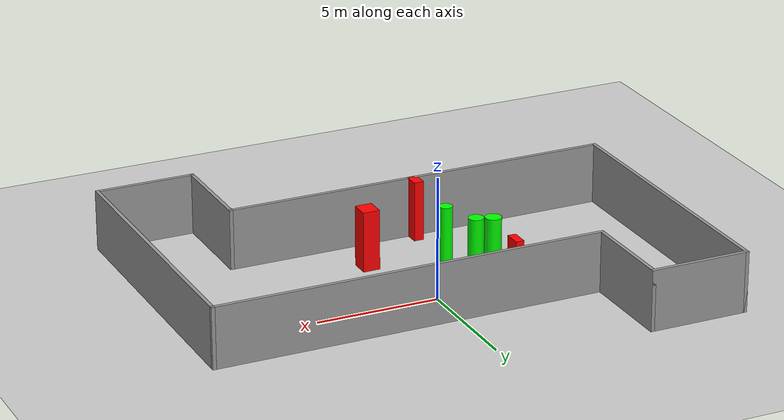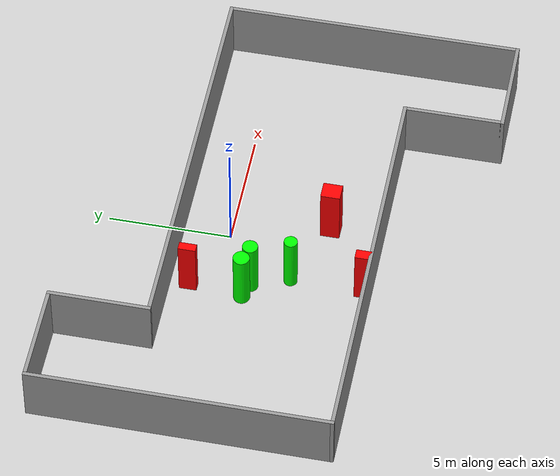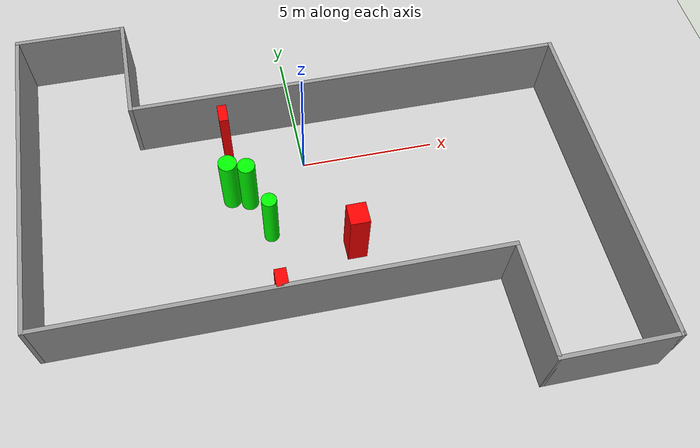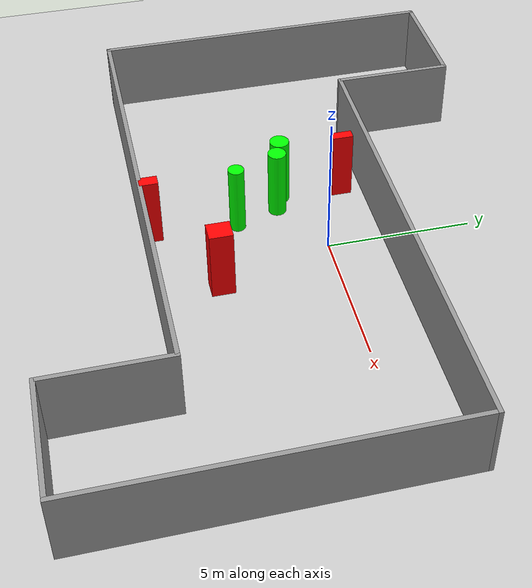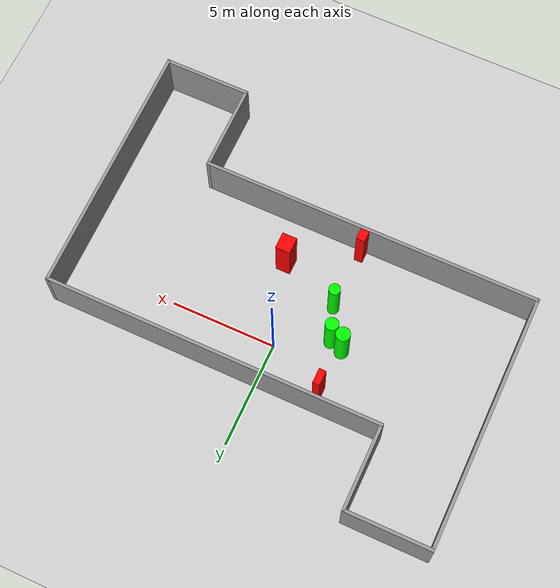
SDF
<sdf version="1.7">
 <world name="default">
  <light name="sun" type="directional">
   <pose>0 0 10 0 -0 0</pose>
   <diffuse>0.8 0.8 0.8 1</diffuse>
   <specular>0.2 0.2 0.2 1</specular>
   <attenuation>
    <range>1000</range>
    <constant>0.9</constant>
    <linear>0.01</linear>
    <quadratic>0.001</quadratic>
   </attenuation>
   <direction>-0.5 0.1 -0.9</direction>
   <spot><inner_angle>0</inner_angle><outer_angle>0</outer_angle><falloff>0</falloff></spot>
  </light>
  <model name="ground_plane">
   <static>1</static>
   <link name="link">
    <collision name="collision">
     <geometry><plane><normal>0 0 1</normal><size>100 100</size></plane></geometry>
     <surface>
      <contact><collide_bitmask>65535</collide_bitmask></contact>
      <friction><ode><mu>100</mu><mu2>50</mu2></ode></friction>
     </surface>
    </collision>
    <visual name="visual">
     <cast_shadows>0</cast_shadows>
     <geometry><plane><normal>0 0 1</normal><size>100 100</size></plane></geometry>
     <material>
      <script><uri>file://media/materials/scripts/gazebo.material</uri><name>Gazebo/Grey</name></script>
     </material>
    </visual>
   </link>
  </model>
  <gravity>0 0 -9.8</gravity>
  <magnetic_field>6e-06 2.3e-05 -4.2e-05</magnetic_field>
  <atmosphere type="adiabatic"/>
  <physics type="ode">
   <max_step_size>0.001</max_step_size>
   <real_time_factor>1</real_time_factor>
   <real_time_update_rate>1000</real_time_update_rate>
  </physics>
  <scene><ambient>0.4 0.4 0.4 1</ambient><background>0.7 0.7 0.7 1</background><shadows>1</shadows></scene>
  <spherical_coordinates>
   <surface_model>EARTH_WGS84</surface_model>
   <latitude_deg>0</latitude_deg>
   <longitude_deg>0</longitude_deg>
   <elevation>0</elevation>
   <heading_deg>0</heading_deg>
  </spherical_coordinates>
  <model name="my_base_walls">
   <link name="Wall_13">
    <collision name="Wall_13_Collision">
     <geometry><box><size>12.15 0.15 2.5</size></box></geometry>
     <pose>0 0 1.25 0 -0 0</pose>
    </collision>
    <visual name="Wall_13_Visual">
     <pose>0 0 1.25 0 -0 0</pose>
     <geometry><box><size>12.15 0.15 2.5</size></box></geometry>
     <material>
      <script><uri>file://media/materials/scripts/gazebo.material</uri><name>Gazebo/Grey</name></script>
      <ambient>1 1 1 1</ambient>
     </material>
     <meta><layer>0</layer></meta>
    </visual>
    <pose>10 -2 0 0 -0 1.5708</pose>
   </link>
   <link name="Wall_15">
    <collision name="Wall_15_Collision">
     <geometry><box><size>16.15 0.15 2.5</size></box></geometry>
     <pose>0 0 1.25 0 -0 0</pose>
    </collision>
    <visual name="Wall_15_Visual">
     <pose>0 0 1.25 0 -0 0</pose>
     <geometry><box><size>16.15 0.15 2.5</size></box></geometry>
     <material>
      <script><uri>file://media/materials/scripts/gazebo.material</uri><name>Gazebo/Grey</name></script>
      <ambient>1 1 1 1</ambient>
     </material>
     <meta><layer>0</layer></meta>
    </visual>
    <pose>2 4 0 0 -0 3.14159</pose>
   </link>
   <link name="Wall_17">
    <collision name="Wall_17_Collision">
     <geometry><box><size>4.15 0.15 2.5</size></box></geometry>
     <pose>0 0 1.25 0 -0 0</pose>
    </collision>
    <visual name="Wall_17_Visual">
     <pose>0 0 1.25 0 -0 0</pose>
     <geometry><box><size>4.15 0.15 2.5</size></box></geometry>
     <material>
      <script><uri>file://media/materials/scripts/gazebo.material</uri><name>Gazebo/Grey</name></script>
      <ambient>1 1 1 1</ambient>
     </material>
     <meta><layer>0</layer></meta>
    </visual>
    <pose>6 -6 0 0 -0 -1.5708</pose>
   </link>
   <link name="Wall_19">
    <collision name="Wall_19_Collision">
     <geometry><box><size>12.15 0.15 2.5</size></box></geometry>
     <pose>0 0 1.25 0 -0 0</pose>
    </collision>
    <visual name="Wall_19_Visual">
     <pose>0 0 1.25 0 -0 0</pose>
     <geometry><box><size>12.15 0.15 2.5</size></box></geometry>
     <material>
      <script><uri>file://media/materials/scripts/gazebo.material</uri><name>Gazebo/Grey</name></script>
      <ambient>1 1 1 1</ambient>
     </material>
     <meta><layer>0</layer></meta>
    </visual>
    <pose>-10 2 0 0 -0 1.5708</pose>
   </link>
   <link name="Wall_21">
    <collision name="Wall_21_Collision">
     <geometry><box><size>4.15 0.15 2.5</size></box></geometry>
     <pose>0 0 1.25 0 -0 0</pose>
    </collision>
    <visual name="Wall_21_Visual">
     <pose>0 0 1.25 0 -0 0</pose>
     <geometry><box><size>4.15 0.15 2.5</size></box></geometry>
     <material>
      <script><uri>file://media/materials/scripts/gazebo.material</uri><name>Gazebo/Grey</name></script>
      <ambient>1 1 1 1</ambient>
     </material>
     <meta><layer>0</layer></meta>
    </visual>
    <pose>-8 8 0 0 -0 0</pose>
   </link>
   <link name="Wall_23">
    <collision name="Wall_23_Collision">
     <geometry><box><size>4.15 0.15 2.5</size></box></geometry>
     <pose>0 0 1.25 0 -0 0</pose>
    </collision>
    <visual name="Wall_23_Visual">
     <pose>0 0 1.25 0 -0 0</pose>
     <geometry><box><size>4.15 0.15 2.5</size></box></geometry>
     <material>
      <script><uri>file://media/materials/scripts/gazebo.material</uri><name>Gazebo/Grey</name></script>
      <ambient>1 1 1 1</ambient>
     </material>
     <meta><layer>0</layer></meta>
    </visual>
    <pose>-6 6 0 0 -0 -1.5708</pose>
   </link>
   <link name="Wall_25">
    <collision name="Wall_25_Collision">
     <geometry><box><size>4.15 0.15 2.5</size></box></geometry>
     <pose>0 0 1.25 0 -0 0</pose>
    </collision>
    <visual name="Wall_25_Visual">
     <pose>0 0 1.25 0 -0 0</pose>
     <geometry><box><size>4.15 0.15 2.5</size></box></geometry>
     <material>
      <script><uri>file://media/materials/scripts/gazebo.material</uri><name>Gazebo/Grey</name></script>
      <ambient>1 1 1 1</ambient>
     </material>
     <meta><layer>0</layer></meta>
    </visual>
    <pose>8 -8 0 0 -0 0</pose>
   </link>
   <link name="Wall_9">
    <collision name="Wall_9_Collision">
     <geometry><box><size>16.15 0.15 2.5</size></box></geometry>
     <pose>0 0 1.25 0 -0 0</pose>
    </collision>
    <visual name="Wall_9_Visual">
     <pose>0 0 1.25 0 -0 0</pose>
     <geometry><box><size>16.15 0.15 2.5</size></box></geometry>
     <material>
      <script><uri>file://media/materials/scripts/gazebo.material</uri><name>Gazebo/Grey</name></script>
      <ambient>1 1 1 1</ambient>
     </material>
     <meta><layer>0</layer></meta>
    </visual>
    <pose>-2 -4 0 0 -0 3.14159</pose>
   </link>
   <static>1</static>
   <pose>-0 -2 0 0 -0 0</pose>
  </model>
  <model name="cylinder1">
   <static>1</static>
   <link name="link">
    <inertial>
     <mass>1</mass>
     <inertia><ixx>0.5</ixx><ixy>0</ixy><ixz>0</ixz><iyy>0.5</iyy><iyz>0</iyz><izz>1</izz></inertia>
    </inertial>
    <collision name="collision">
     <geometry><cylinder><radius>0.33367999744966004</radius><length>2.5</length></cylinder></geometry>
    </collision>
    <visual name="visual">
     <geometry><cylinder><radius>0.33367999744966004</radius><length>2.5</length></cylinder></geometry>
     <material>
      <ambient>0 1 0 1</ambient>
      <diffuse>0 1 0 1</diffuse>
      <specular>0.1 0.1 0.1 1</specular>
      <emissive>0 0 0 0</emissive>
     </material>
    </visual>
   </link>
   <pose>-2.884076223109184 -1.0232931165001444 1.25 0 0 0</pose>
  </model>
  <model name="cylinder2">
   <static>1</static>
   <link name="link">
    <inertial>
     <mass>1</mass>
     <inertia><ixx>0.5</ixx><ixy>0</ixy><ixz>0</ixz><iyy>0.5</iyy><iyz>0</iyz><izz>1</izz></inertia>
    </inertial>
    <collision name="collision">
     <geometry><cylinder><radius>0.3121459303582177</radius><length>2.5</length></cylinder></geometry>
    </collision>
    <visual name="visual">
     <geometry><cylinder><radius>0.3121459303582177</radius><length>2.5</length></cylinder></geometry>
     <material>
      <ambient>0 1 0 1</ambient>
      <diffuse>0 1 0 1</diffuse>
      <specular>0.1 0.1 0.1 1</specular>
      <emissive>0 0 0 0</emissive>
     </material>
    </visual>
   </link>
   <pose>-2.2562977174560794 -1.2520191745869367 1.25 0 0 0</pose>
  </model>
  <model name="cylinder3">
   <static>1</static>
   <link name="link">
    <inertial>
     <mass>1</mass>
     <inertia><ixx>0.5</ixx><ixy>0</ixy><ixz>0</ixz><iyy>0.5</iyy><iyz>0</iyz><izz>1</izz></inertia>
    </inertial>
    <collision name="collision">
     <geometry><cylinder><radius>0.27200857835469777</radius><length>2.5</length></cylinder></geometry>
    </collision>
    <visual name="visual">
     <geometry><cylinder><radius>0.27200857835469777</radius><length>2.5</length></cylinder></geometry>
     <material>
      <ambient>0 1 0 1</ambient>
      <diffuse>0 1 0 1</diffuse>
      <specular>0.1 0.1 0.1 1</specular>
      <emissive>0 0 0 0</emissive>
     </material>
    </visual>
   </link>
   <pose>-1.7071889714727737 -2.774844974638752 1.25 0 0 0</pose>
  </model>
  <model name="box1">
   <static>1</static>
   <link name="link">
    <inertial>
     <mass>1</mass>
     <inertia><ixx>0.083</ixx><ixy>0</ixy><ixz>0</ixz><iyy>0.083</iyy><iyz>0</iyz><izz>0.083</izz></inertia>
    </inertial>
    <collision name="collision">
     <geometry><box><size>0.6937878466903546 0.7842602212985473 2.5</size></box></geometry>
    </collision>
    <visual name="visual">
     <geometry><box><size>0.6937878466903546 0.7842602212985473 2.5</size></box></geometry>
     <material>
      <ambient>1 0 0 1</ambient>
      <diffuse>1 0 0 1</diffuse>
      <specular>0.1 0.1 0.1 1</specular>
      <emissive>0 0 0 0</emissive>
     </material>
    </visual>
    <sensor name="my_contact" type="contact">
     <contact><collision>box_collision</collision><topic>__default_topic__</topic></contact>
    </sensor>
   </link>
   <pose>1.1421993341243173 -3.8857078556464053 1.25 0 0 0</pose>
  </model>
  <model name="box2">
   <static>1</static>
   <link name="link">
    <inertial>
     <mass>1</mass>
     <inertia><ixx>0.083</ixx><ixy>0</ixy><ixz>0</ixz><iyy>0.083</iyy><iyz>0</iyz><izz>0.083</izz></inertia>
    </inertial>
    <collision name="collision">
     <geometry><box><size>0.3359331860697915 0.7071327822624912 2.5</size></box></geometry>
    </collision>
    <visual name="visual">
     <geometry><box><size>0.3359331860697915 0.7071327822624912 2.5</size></box></geometry>
     <material>
      <ambient>1 0 0 1</ambient>
      <diffuse>1 0 0 1</diffuse>
      <specular>0.1 0.1 0.1 1</specular>
      <emissive>0 0 0 0</emissive>
     </material>
    </visual>
    <sensor name="my_contact" type="contact">
     <contact><collision>box_collision</collision><topic>__default_topic__</topic></contact>
    </sensor>
   </link>
   <pose>-2.7405208464793853 1.168455849765297 1.25 0 0 0</pose>
  </model>
  <model name="box3">
   <static>1</static>
   <link name="link">
    <inertial>
     <mass>1</mass>
     <inertia><ixx>0.083</ixx><ixy>0</ixy><ixz>0</ixz><iyy>0.083</iyy><iyz>0</iyz><izz>0.083</izz></inertia>
    </inertial>
    <collision name="collision">
     <geometry><box><size>0.4083998072711797 0.626182839107791 2.5</size></box></geometry>
    </collision>
    <visual name="visual">
     <geometry><box><size>0.4083998072711797 0.626182839107791 2.5</size></box></geometry>
     <material>
      <ambient>1 0 0 1</ambient>
      <diffuse>1 0 0 1</diffuse>
      <specular>0.1 0.1 0.1 1</specular>
      <emissive>0 0 0 0</emissive>
     </material>
    </visual>
    <sensor name="my_contact" type="contact">
     <contact><collision>box_collision</collision><topic>__default_topic__</topic></contact>
    </sensor>
   </link>
   <pose>-1.7995600215114953 -5.70293295775356 1.25 0 0 0</pose>
  </model>
 </world>
</sdf>
